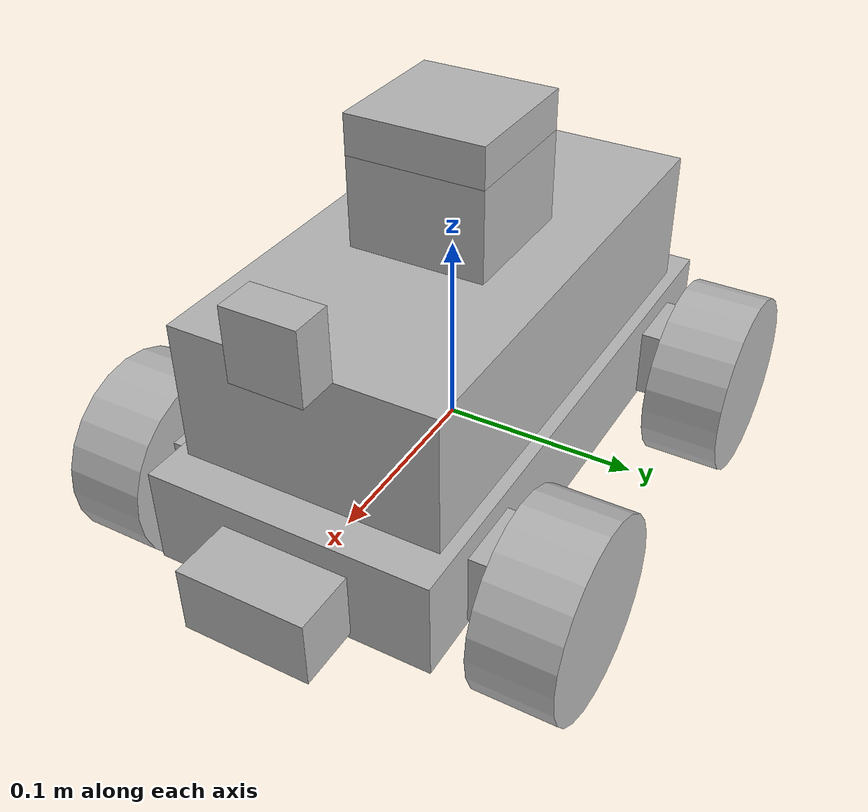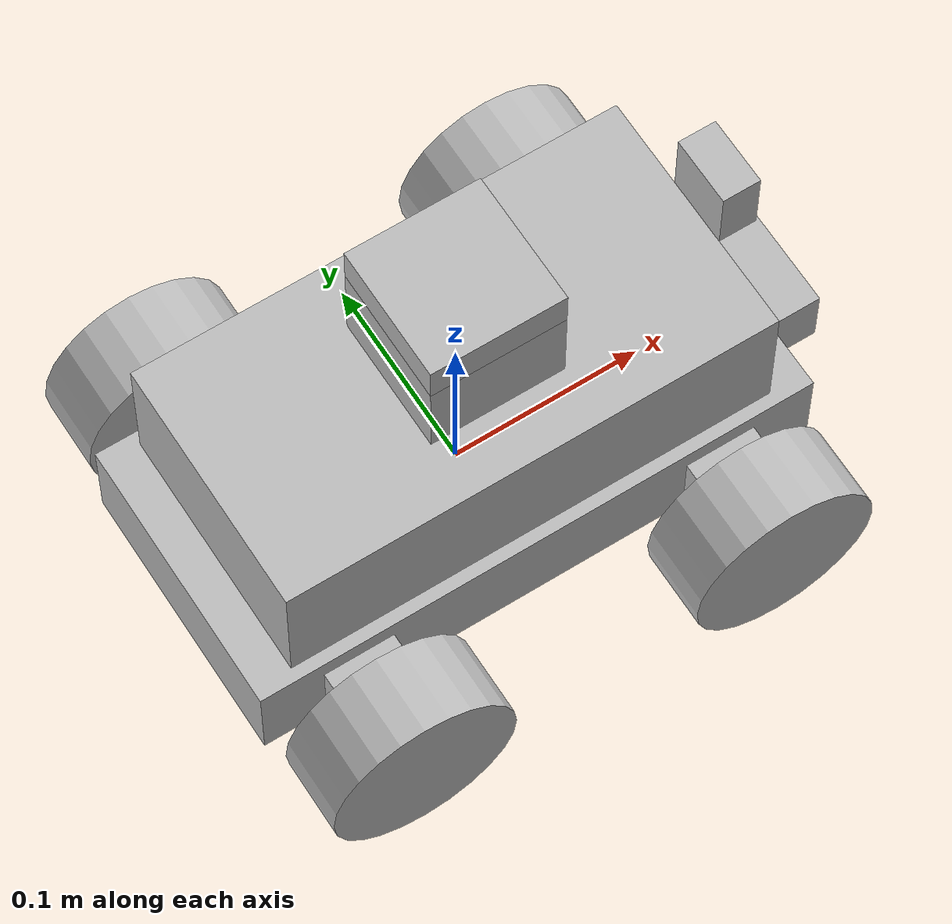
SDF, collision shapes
<?xml version="1.0" ?>
<sdf version="1.11">
  <model name="omniseer">
    <!-- TODO: macro refactor this -->
    <!-- artifact from import script  -->
    <link name="base_link">
      <inertial>
        <mass>0.0001</mass>
        <inertia>
          <ixx>1e-09</ixx>
          <ixy>0</ixy>
          <ixz>0</ixz>
          <iyy>1e-09</iyy>
          <iyz>0</iyz>
          <izz>1e-09</izz>
        </inertia>
      </inertial>
    </link>
    <!-- wheels -->
    <link name="fl_wheel">
      <pose relative_to="__model__">0.09760000179931552 0.10761705076677833 8.938861234365387e-06 -1.4216528736923893e-29 3.1554436208840444e-30 -1.2281842209915656e-15</pose>
      <inertial>
        <mass>0.1449437592188408</mass>
        <inertia>
          <ixx>0.0001065427220107956</ixx>
          <ixy>0.0</ixy>
          <ixz>4.7460314825842516e-20</ixz>
          <iyy>0.00017047197881125617</iyy>
          <iyz>5.190723779892759e-20</iyz>
          <izz>0.00010654272201080081</izz>
        </inertia>
      </inertial>
      <visual name="fl_wheel__body1_visual">
        <geometry>
          <mesh>
            <scale>0.01 0.01 0.01</scale>
            <uri>file://meshes/fl_wheel_1/body1_visual.obj</uri>
          </mesh>
        </geometry>
      </visual>
      <collision name="fl_wheel__body1_collision">
        <pose>0 0 0 1.57079632679 1.57079632679 0</pose>
        <geometry>
          <cylinder>
            <radius>0.0485</radius>
            <length>0.041</length>
          </cylinder>
        </geometry>
        <surface>
          <friction>
            <ode>
              <mu>1.0</mu>          <mu2>0.1</mu2>
              <slip1>0.02</slip1>   <slip2>0.02</slip2>
            </ode>
          </friction>
        </surface>
      </collision>
    </link>
    <link name="bl_wheel_1">
      <pose relative_to="__model__">-0.09710000179931515 0.10761705076677833 8.938861234365387e-06 -1.4216528736923893e-29 3.1554436208840444e-30 -1.2281842209915656e-15</pose>
      <inertial>
        <mass>0.1449437592188408</mass>
        <inertia>
          <ixx>0.0001065427220107956</ixx>
          <ixy>2.168404344971009e-19</ixy>
          <ixz>4.743384504624082e-20</ixz>
          <iyy>0.00017047197881125617</iyy>
          <iyz>5.190723779892759e-20</iyz>
          <izz>0.00010654272201080037</izz>
        </inertia>
      </inertial>
      <visual name="bl_wheel_1__body1_visual">
        <geometry>
          <mesh>
            <scale>0.01 0.01 0.01</scale>
            <uri>file://meshes/bl_wheel_1/body1_visual.obj</uri>
          </mesh>
        </geometry>
      </visual>
      <collision name="bl_wheel_1__body1_collision">
        <pose>0 0 0 1.57079632679 1.57079632679 0</pose>
        <geometry>
          <cylinder>
            <radius>0.0485</radius>
            <length>0.041</length>
          </cylinder>
        </geometry>
        <surface>
          <friction>
            <ode>
              <mu>1.0</mu>          <mu2>0.1</mu2>
              <slip1>0.02</slip1>   <slip2>0.02</slip2>
            </ode>
          </friction>
        </surface>
      </collision>
    </link>
    <link name="fr_wheel_1">
      <pose relative_to="__model__">0.09760000179931558 -0.10761705076677823 8.938861234365387e-06 -1.4216528736923893e-29 3.1554436208840444e-30 -1.2281842209915656e-15</pose>
      <inertial>
        <mass>0.1449437592188408</mass>
        <inertia>
          <ixx>0.0001065427220107956</ixx>
          <ixy>0.0</ixy>
          <ixz>4.7460314825842516e-20</ixz>
          <iyy>0.00017047197881125617</iyy>
          <iyz>5.1880768019325896e-20</iyz>
          <izz>0.00010654272201079994</izz>
        </inertia>
      </inertial>
      <visual name="fr_wheel_1__body1_visual">
        <geometry>
          <mesh>
            <scale>0.01 0.01 0.01</scale>
            <uri>file://meshes/fr_wheel_1/body1_visual.obj</uri>
          </mesh>
        </geometry>
      </visual>
      <collision name="fr_wheel_1__body1_collision">
        <pose>0 0 0 1.57079632679 1.57079632679 0</pose>
        <geometry>
          <cylinder>
            <radius>0.0485</radius>
            <length>0.041</length>
          </cylinder>
        </geometry>
        <surface>
          <friction>
            <ode>
              <mu>1.0</mu>          <mu2>0.1</mu2>
              <slip1>0.02</slip1>   <slip2>0.02</slip2>
            </ode>
          </friction>
        </surface>
      </collision>
    </link>
    <link name="br_wheel_1">
      <pose relative_to="__model__">-0.09710000179931509 -0.10761705076677823 8.938861234365387e-06 -1.4216528736923893e-29 3.1554436208840444e-30 -1.2281842209915656e-15</pose>
      <inertial>
        <mass>0.1449437592188408</mass>
        <inertia>
          <ixx>0.0001065427220107956</ixx>
          <ixy>0.0</ixy>
          <ixz>4.7460314825842516e-20</ixz>
          <iyy>0.00017047197881125617</iyy>
          <iyz>5.1880768019325896e-20</iyz>
          <izz>0.00010654272201079994</izz>
        </inertia>
      </inertial>
      <visual name="br_wheel_1__body1_visual">
        <geometry>
          <mesh>
            <scale>0.01 0.01 0.01</scale>
            <uri>file://meshes/br_wheel_1/body1_visual.obj</uri>
          </mesh>
        </geometry>
      </visual>
      <collision name="br_wheel_1__body1_collision">
        <pose>0 0 0 1.57079632679 1.57079632679 0</pose>
        <geometry>
          <cylinder>
            <radius>0.0485</radius>
            <length>0.041</length>
          </cylinder>
        </geometry>
        <surface>
          <friction>
            <ode>
              <mu>1.0</mu>          <mu2>0.1</mu2>
              <slip1>0.02</slip1>   <slip2>0.02</slip2>
            </ode>
          </friction>
        </surface>
      </collision>
    </link>

    <!-- chassis -->
    <link name="chassis_1">
      <inertial>
        <pose>0.015255860402233874 0.00044882299423251547 0.05333371024181444 0.0 -0.0 0.0</pose>
        <mass>5.320840769031529</mass>
        <inertia>
          <ixx>0.02446073029164947</ixx>
          <ixy>3.555570989810459e-05</ixy>
          <ixz>0.0026756715987900814</ixz>
          <iyy>0.051291345440382746</iyy>
          <iyz>0.00014378429529634938</iyz>
          <izz>0.042444773249914435</izz>
        </inertia>
      </inertial>
      <visual name="chassis_1__body_visual">
        <geometry>
          <mesh>
            <scale>0.01 0.01 0.01</scale>
            <uri>file://meshes/chassis_1/body_visual.obj</uri>
          </mesh>
        </geometry>
      </visual>
      <visual name="chassis_1__powerbank_visual">
        <geometry>
          <mesh>
            <scale>0.01 0.01 0.01</scale>
            <uri>file://meshes/chassis_1/powerbank_visual.obj</uri>
          </mesh>
        </geometry>
      </visual>
      <visual name="chassis_1__battery_visual">
        <geometry>
          <mesh>
            <scale>0.01 0.01 0.01</scale>
            <uri>file://meshes/chassis_1/battery_visual.obj</uri>
          </mesh>
        </geometry>
      </visual>
      <visual name="chassis_1__bl_motor_visual">
        <geometry>
          <mesh>
            <scale>0.01 0.01 0.01</scale>
            <uri>file://meshes/chassis_1/bl_motor_visual.obj</uri>
          </mesh>
        </geometry>
      </visual>
      <visual name="chassis_1__br_motor_visual">
        <geometry>
          <mesh>
            <scale>0.01 0.01 0.01</scale>
            <uri>file://meshes/chassis_1/br_motor_visual.obj</uri>
          </mesh>
        </geometry>
      </visual>
      <visual name="chassis_1__fl_motor_visual">
        <geometry>
          <mesh>
            <scale>0.01 0.01 0.01</scale>
            <uri>file://meshes/chassis_1/fl_motor_visual.obj</uri>
          </mesh>
        </geometry>
      </visual>
      <visual name="chassis_1__fr_motor_visual">
        <geometry>
          <mesh>
            <scale>0.01 0.01 0.01</scale>
            <uri>file://meshes/chassis_1/fr_motor_visual.obj</uri>
          </mesh>
        </geometry>
      </visual>
      <visual name="chassis_1__hs_visual">
        <geometry>
          <mesh>
            <scale>0.01 0.01 0.01</scale>
            <uri>file://meshes/chassis_1/hs_visual.obj</uri>
          </mesh>
        </geometry>
      </visual>
      <visual name="chassis_1__imu_visual">
        <geometry>
          <mesh>
            <scale>0.01 0.01 0.01</scale>
            <uri>file://meshes/chassis_1/imu_visual.obj</uri>
          </mesh>
        </geometry>
      </visual>
      <visual name="chassis_1__upper_plate_visual">
        <geometry>
          <mesh>
            <scale>0.01 0.01 0.01</scale>
            <uri>file://meshes/chassis_1/upper_plate_visual.obj</uri>
          </mesh>
        </geometry>
      </visual>
      <visual name="chassis_1__camera_visual">
        <geometry>
          <mesh>
            <scale>0.01 0.01 0.01</scale>
            <uri>file://meshes/chassis_1/camera_visual.obj</uri>
          </mesh>
        </geometry>
      </visual>
      <visual name="chassis_1__lidar_body_visual">
        <geometry>
          <mesh>
            <scale>0.01 0.01 0.01</scale>
            <uri>file://meshes/chassis_1/lidar_body_visual.obj</uri>
          </mesh>
        </geometry>
      </visual>
      <collision name="chassis_1__body_collision">
        <pose relative_to="__model__">0.0 0.0 0.011096708873493042 -0.0 -1.5707963267948966 0</pose>
        <geometry>
          <box>
            <size>0.05 0.14500000688713044 0.2969975141066243</size>
          </box>
        </geometry>
      </collision>
      <collision name="chassis_1__powerbank_collision">
        <pose relative_to="__model__">0.0004999982006848214 -0.030382949210869984 0.0033422814465520513 -0.0 -1.5707963267948966 0</pose>
        <geometry>
          <box>
            <size>0.029000000000000005 0.071 0.11000000000000001</size>
          </box>
        </geometry>
      </collision>
      <collision name="chassis_1__battery_collision">
        <pose relative_to="__model__">0.000499998200684928 0.03961705078913 0.001342281446551261 -0.0 -1.5707963267948966 0</pose>
        <geometry>
          <box>
            <size>0.025 0.045 0.135</size>
          </box>
        </geometry>
      </collision>
      <collision name="chassis_1__bl_motor_collision">
        <pose relative_to="__model__">-0.09710000179931542 0.050017050766778225 0.0070089377361969765 -0.0 -1.5707963267948966 0</pose>
        <geometry>
          <box>
            <size>0.037000000000000005 0.07320000000000014 0.03699999999999999</size>
          </box>
        </geometry>
      </collision>
      <collision name="chassis_1__br_motor_collision">
        <pose relative_to="__model__">-0.09710000179931542 -0.050017050766778225 0.0070089377361969765 -0.0 -1.5707963267948966 0</pose>
        <geometry>
          <box>
            <size>0.037000000000000005 0.07320000000000014 0.03699999999999999</size>
          </box>
        </geometry>
      </collision>
      <collision name="chassis_1__fl_motor_collision">
        <pose relative_to="__model__">0.09760000179931541 0.050017050766778225 0.0070089377361969765 -0.0 -1.5707963267948966 0</pose>
        <geometry>
          <box>
            <size>0.037000000000000005 0.07320000000000014 0.03699999999999999</size>
          </box>
        </geometry>
      </collision>
      <collision name="chassis_1__fr_motor_collision">
        <pose relative_to="__model__">0.09760000179931541 -0.050017050766778225 0.0070089377361969765 -0.0 -1.5707963267948966 0</pose>
        <geometry>
          <box>
            <size>0.037000000000000005 0.07320000000000014 0.03699999999999999</size>
          </box>
        </geometry>
      </collision>
      <collision name="chassis_1__hs_collision">
        <pose relative_to="__model__">0.16424875705331196 -4.473035630434552e-06 0.00630893883889007 -0.0 -1.5707963267948966 0</pose>
        <geometry>
          <box>
            <size>0.03400000000000001 0.06475 0.032500000000000036</size>
          </box>
        </geometry>
      </collision>
      <collision name="chassis_1__imu_collision">
        <pose relative_to="__model__">0.010000000000000002 8.881784197001253e-18 0.04284670887349312 -0.0 -1.5707963267948966 0</pose>
        <geometry>
          <box>
            <size>0.013499999999999996 0.026499999999999985 0.020000000000000004</size>
          </box>
        </geometry>
      </collision>
      <collision name="chassis_1__upper_plate_collision">
        <pose relative_to="__model__">-7.105427357601002e-16 9.237055564881303e-16 0.07109670887349191 -0.0 -1.5707963267948966 0</pose>
        <geometry>
          <box>
            <size>0.0699999999999978 0.132 0.257</size>
          </box>
        </geometry>
      </collision>
      <collision name="chassis_1__camera_collision">
        <pose relative_to="__model__">0.1384999999999989 1.0369483049998962e-15 0.12409670887349437 -0.0 -1.5707963267948966 0</pose>
        <geometry>
          <box>
            <size>0.03600000000000001 0.036000000536441805 0.020000000000000177</size>
          </box>
        </geometry>
      </collision>
      <collision name="chassis_1__lidar_body_collision">
        <pose relative_to="__model__">-5.3734794391857575e-16 5.151434834260726e-16 0.12909670887349262 -0.0 -1.5707963267948966 0</pose>
        <geometry>
          <box>
            <size>0.04600000000000001 0.07 0.07</size>
          </box>
        </geometry>
      </collision>
    </link>

    <!-- lidar -->
    <link name="lidar_top_1">
      <inertial>
        <pose>-2.954093418429609e-17 9.748508280817712e-16 0.16209670887349303 0.0 -0.0 0.0</pose>
        <mass>0.6042068071016563</mass>
        <inertia>
          <ixx>0.0002051785615782703</ixx>
          <ixy>9.281393431592714e-18</ixy>
          <ixz>1.2566166227386013e-18</ixz>
          <iyy>0.0002051785615782599</iyy>
          <iyz>4.224665266698078e-18</iyz>
          <izz>0.000370076669349746</izz>
        </inertia>
      </inertial>
      <visual name="lidar_top_1__body1_visual">
        <geometry>
          <mesh>
            <scale>0.01 0.01 0.01</scale>
            <uri>file://meshes/lidar_top_1/body1_visual.obj</uri>
          </mesh>
        </geometry>
      </visual>
      <collision name="lidar_top_1__body1_collision">
        <pose relative_to="__model__">-7.727152251391089e-16 7.416289804496045e-16 0.16209670887349262 -0.0 -1.5707963267948966 0</pose>
        <geometry>
          <box>
            <size>0.019999999999999983 0.07 0.07</size>
          </box>
        </geometry>
      </collision>
    </link>

    <!-- joints -->
    <joint name="br_wheel_joint" type="revolute">
      <pose relative_to="__model__">-0.09710000179931534 -0.08661705076677828 8.937736196800161e-06 0.0 -0.0 0.0</pose>
      <parent>chassis_1</parent>
      <child>br_wheel_1</child>
      <axis>
        <xyz expressed_in="__model__">0 1.0 0</xyz>
      </axis>
    </joint>
    <joint name="fr_wheel_joint" type="revolute">
      <pose relative_to="__model__">0.09760000179931533 -0.08661705076677828 8.937736196800161e-06 0.0 -0.0 0.0</pose>
      <parent>chassis_1</parent>
      <child>fr_wheel_1</child>
      <axis>
        <xyz expressed_in="__model__">0 1.0 0</xyz>

      </axis>
    </joint>
    <joint name="bl_wheel_joint" type="revolute">
      <pose relative_to="__model__">-0.09710000179931534 0.08661705076677828 8.937736196800161e-06 0.0 -0.0 0.0</pose>
      <parent>chassis_1</parent>
      <child>bl_wheel_1</child>
      <axis>
        <xyz expressed_in="__model__">0 1.0 0</xyz>

      </axis>
    </joint>
    <joint name="fl_wheel_joint" type="revolute">
      <pose relative_to="__model__">0.09760000179931533 0.08661705076677828 8.937736196800161e-06 0.0 -0.0 0.0</pose>
      <parent>chassis_1</parent>
      <child>fl_wheel</child>
      <axis>
        <xyz expressed_in="__model__">0 1.0 0</xyz>
      </axis>
    </joint>
    <joint name="lidar_joint" type="revolute">
      <pose relative_to="__model__">-5.3734794391857575e-16 5.151434834260726e-16 0.15209670887349305 0.0 -0.0 0.0</pose>
      <parent>chassis_1</parent>
      <child>lidar_top_1</child>
      <axis>
        <xyz expressed_in="__model__">0 0 1.0</xyz>
      </axis>
    </joint>
    <joint name="base_link_joint" type="fixed">
      <parent>base_link</parent>
      <child>chassis_1</child>
      <axis/>
    </joint>

    <!-- plugins -->
    <plugin filename='gz-sim-mecanum-drive-system'>

      <front_left_joint>fl_wheel_joint</front_left_joint>
      <front_right_joint>fr_wheel_joint</front_right_joint>
      <back_left_joint>bl_wheel_joint</back_left_joint>
      <back_right_joint>br_wheel_joint</back_right_joint>

      <wheelbase>0.19470000359863066</wheelbase>
      <wheel_separation>0.21523410153355654</wheel_separation>
      <wheel_radius>0.0485</wheel_radius>

      <topic>cmd_vel</topic>
      <odom_topic>odom</odom_topic>
      <tf_topic>tf</tf_topic>

      <frame_id>odom</frame_id>
      <child_frame_id>base_link</child_frame_id>

      <odom_publish_frequency>50</odom_publish_frequency>
    </plugin>
  </model>
</sdf>
